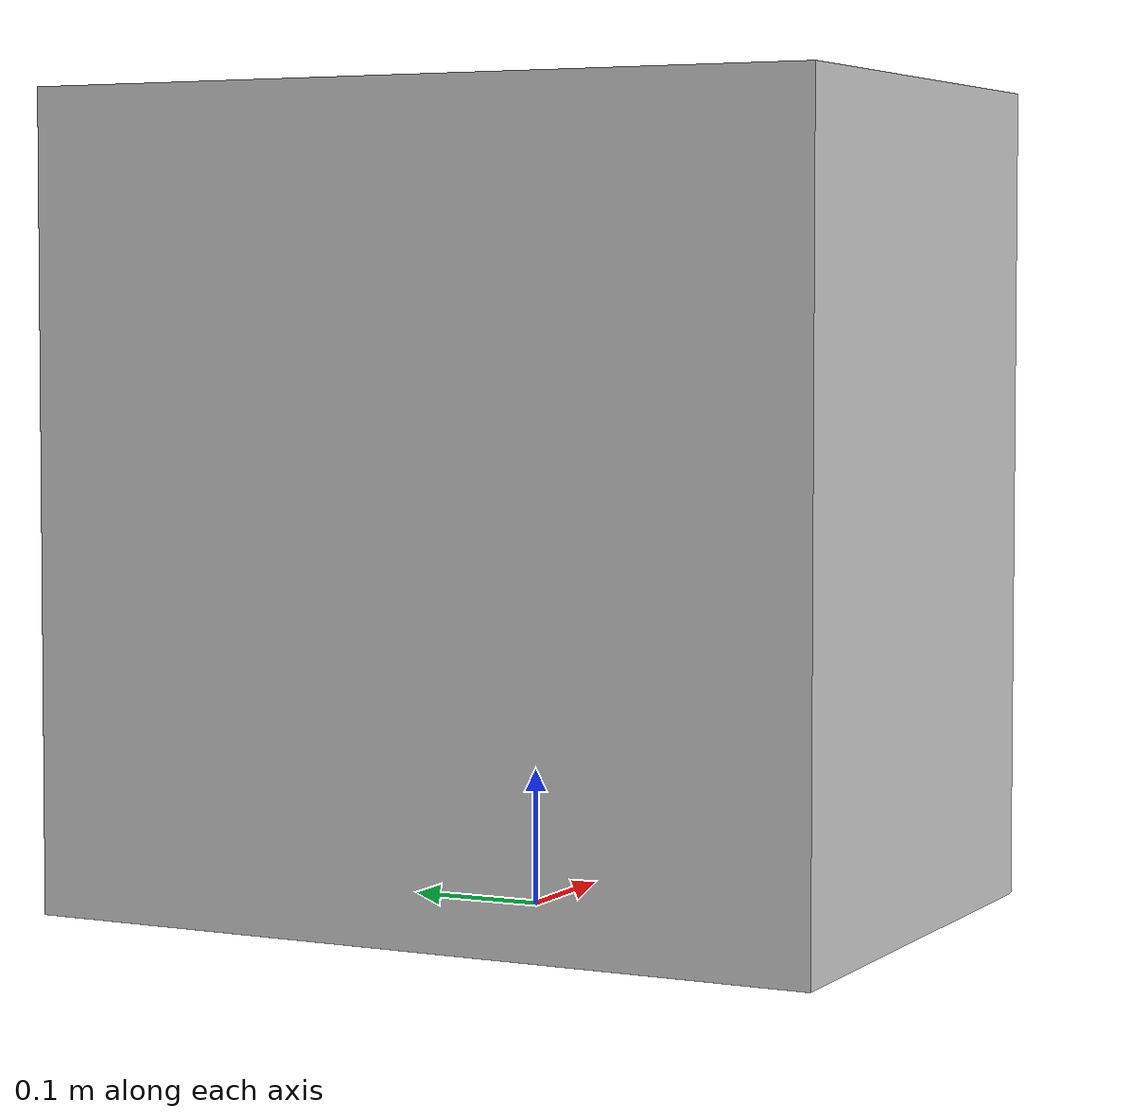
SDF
<?xml version="1.0" ?>
<!-- |    This document was autogenerated by xacro from anymal.sdf.xacro               | -->
<!-- |    EDITING THIS FILE BY HAND IS NOT RECOMMENDED                                 | -->
<sdf version="1.6">
  <model name="anymal">
    <link name="box">
      <pose>0 0 0.3 0 0 0</pose>
      <inertial>
        <mass>10.0</mass>
        <inertia>
          <ixx>0.010799999999999999</ixx>
          <ixy>0.0</ixy>
          <ixz>0.0</ixz>
          <iyy>0.0048000000000000004</iyy>
          <iyz>0.0</iyz>
          <izz>0.0048000000000000004</izz>
        </inertia>
      </inertial>
      <visual name="box_visual">
        <pose>0 0 0 0 0 0</pose>
        <geometry>
          <box>
            <size>0.4 0.6 0.6</size>
          </box>
        </geometry>
      </visual>
      <collision name="box_collision">
        <pose>0 0 0 0 0 0</pose>
        <geometry>
          <box>
            <size>0.4 0.6 0.6</size>
          </box>
        </geometry>
        <surface>
          <contact>
            <ode>
              <kp>1e6</kp>
              <kd>1.0</kd>
            </ode>
          </contact>
        </surface>
      </collision>
    </link>
  </model>
</sdf>
